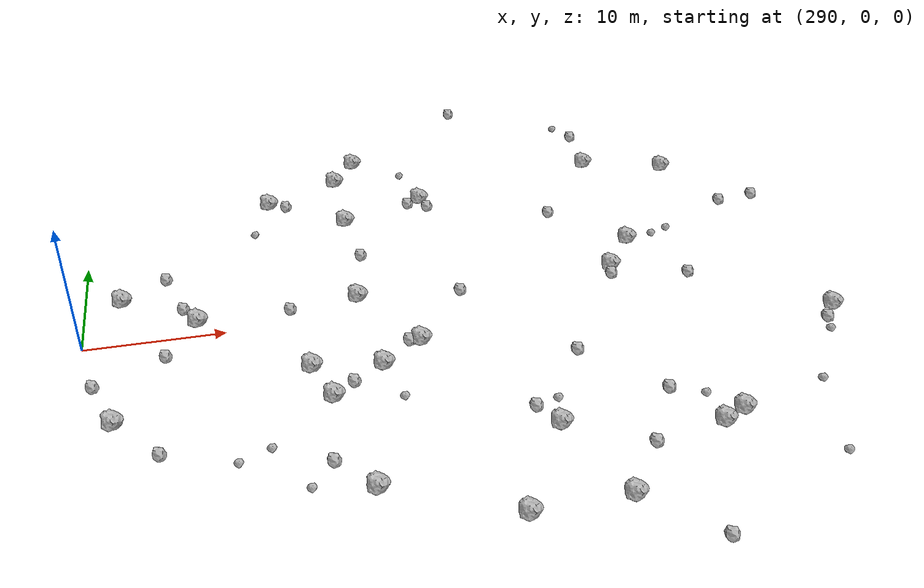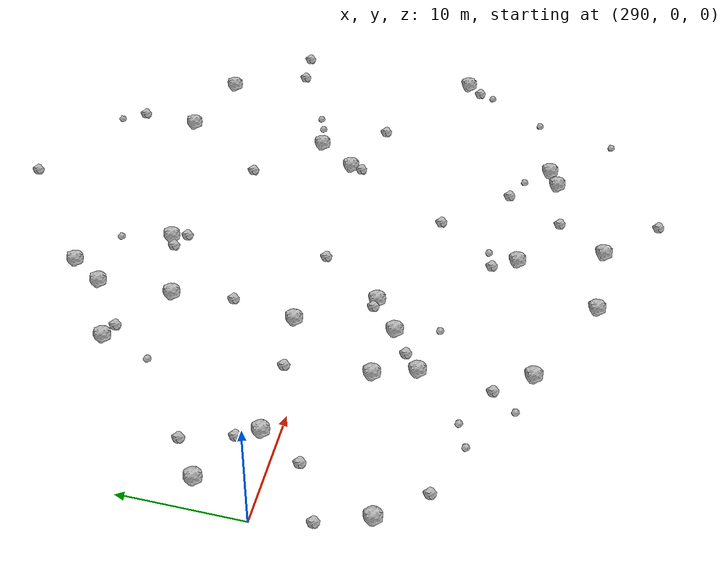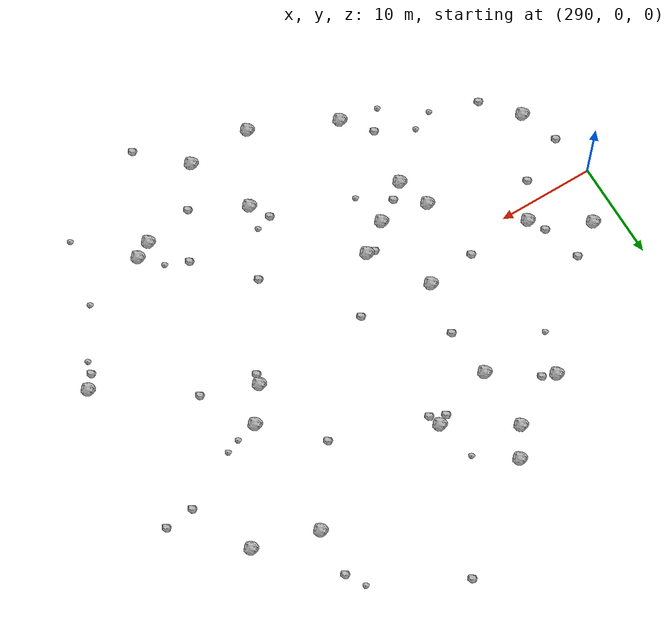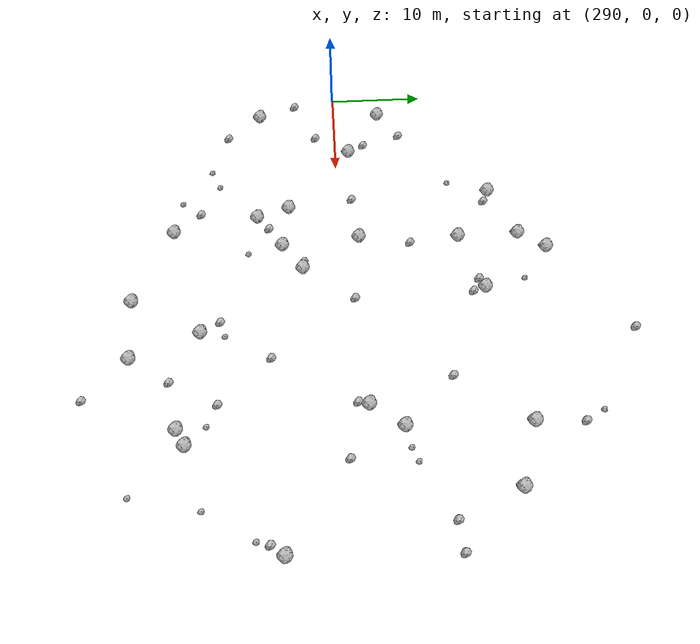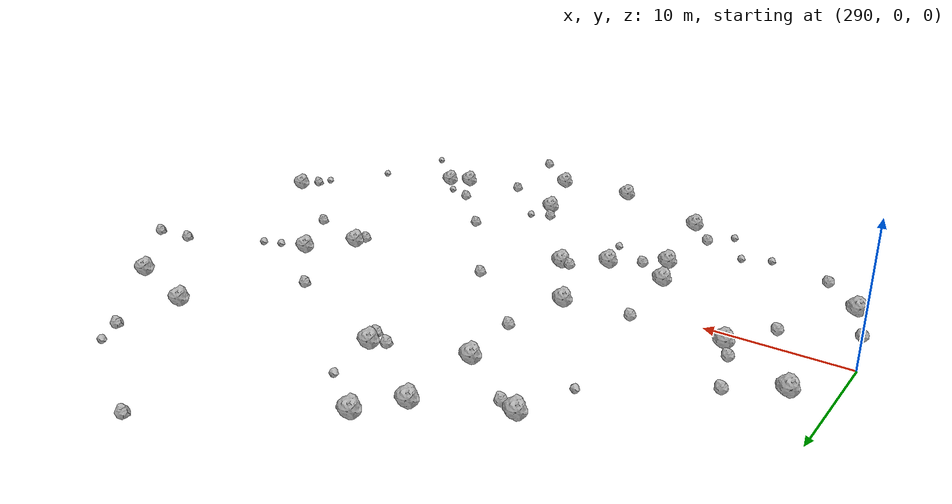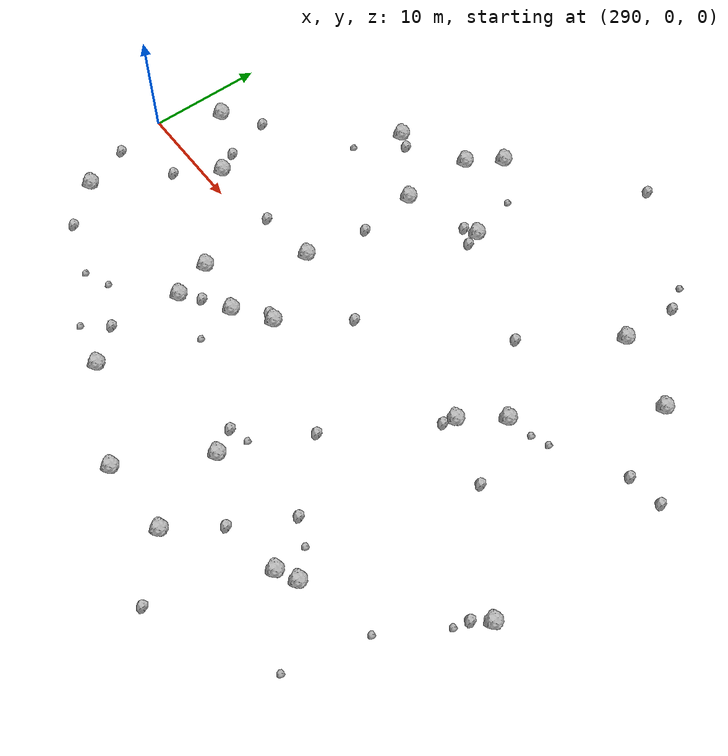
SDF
<sdf version="1.6">
 <world name="default">
  <include><uri>model://sun</uri></include>
  <model name="rock1_8_3">
   <include><uri>model://rock1</uri><pose>305.60893512580986 -5.268440396707909 0.5 0 0 0</pose></include>
  </model>
  <model name="rock1_8_4">
   <include><uri>model://rock1</uri><pose>329.46780816779824 2.2421795476069946 0.5 0 0 0</pose></include>
  </model>
  <model name="rock1_8_5">
   <include><uri>model://rock1</uri><pose>309.7850004179813 2.1193226813596553 0.5 0 0 0</pose></include>
  </model>
  <model name="rock1_8_6">
   <include><uri>model://rock1</uri><pose>310.5098619850954 -5.989635394632369 0.5 0 0 0</pose></include>
  </model>
  <model name="rock1_8_7">
   <include><uri>model://rock1</uri><pose>331.9669424217231 17.867489043810508 0.5 0 0 0</pose></include>
  </model>
  <model name="rock1_8_8">
   <include><uri>model://rock1</uri><pose>310.06494401848556 18.964314090836574 0.5 0 0 0</pose></include>
  </model>
  <model name="rock1_8_9">
   <include><uri>model://rock1</uri><pose>332.96351629821856 -15.263086392459424 0.5 0 0 0</pose></include>
  </model>
  <model name="rock1_8_10">
   <include><uri>model://rock1</uri><pose>311.9760208545326 21.75885590989455 0.5 0 0 0</pose></include>
  </model>
  <model name="rock1_8_11">
   <include><uri>model://rock1</uri><pose>331.2797986488566 -16.1339695566069 0.5 0 0 0</pose></include>
  </model>
  <model name="rock1_8_12">
   <include><uri>model://rock1</uri><pose>292.41538735515235 -8.445122335015554 0.5 0 0 0</pose></include>
  </model>
  <model name="rock1_8_13">
   <include><uri>model://rock1</uri><pose>320.803748854078 -14.226730238320044 0.5 0 0 0</pose></include>
  </model>
  <model name="rock1_8_14">
   <include><uri>model://rock1</uri><pose>338.5137908129033 15.948145818523287 0.5 0 0 0</pose></include>
  </model>
  <model name="rock1_8_15">
   <include><uri>model://rock1</uri><pose>343.9019499341714 -5.910968057092443 0.5 0 0 0</pose></include>
  </model>
  <model name="rock1_8_16">
   <include><uri>model://rock1</uri><pose>306.74127790673367 -8.63483502024468 0.5 0 0 0</pose></include>
  </model>
  <model name="rock1_8_17">
   <include><uri>model://rock1</uri><pose>298.06528414254166 1.4557180023512686 0.5 0 0 0</pose></include>
  </model>
  <model name="rock1_8_18">
   <include><uri>model://rock1</uri><pose>323.43893286643413 -21.148773674874775 0.5 0 0 0</pose></include>
  </model>
  <model name="rock1_8_19">
   <include><uri>model://rock1</uri><pose>310.1847950238949 12.614070168131683 0.5 0 0 0</pose></include>
  </model>
  <model name="rock1_8_20">
   <include><uri>model://rock1</uri><pose>308.356329796173 -17.45146855256916 0.5 0 0 0</pose></include>
  </model>
  <model name="rock1_8_21">
   <include><uri>model://rock1</uri><pose>316.7133898932011 14.845934426192656 0.5 0 0 0</pose></include>
  </model>
  <model name="rock1_8_22">
   <include><uri>model://rock1</uri><pose>304.29821854834876 16.386922039241284 0.5 0 0 0</pose></include>
  </model>
  <model name="rock1_8_23">
   <include><uri>model://rock1</uri><pose>313.4976383157388 -3.871504812608727 0.5 0 0 0</pose></include>
  </model>
  <model name="rock1_8_24">
   <include><uri>model://rock1</uri><pose>292.66323387279897 4.962824897673798 0.5 0 0 0</pose></include>
  </model>
  <model name="rock1_8_25">
   <include><uri>model://rock1</uri><pose>316.82563859026624 -21.34870928872025 0.5 0 0 0</pose></include>
  </model>
  <model name="rock1_8_26">
   <include><uri>model://rock1</uri><pose>331.89184860666626 5.528149235411725 0.5 0 0 0</pose></include>
  </model>
  <model name="rock2_8_0">
   <include><uri>model://rock2</uri><pose>304.71432254329085 1.5699277543065726 0.3 0 0 0</pose></include>
  </model>
  <model name="rock2_8_1">
   <include><uri>model://rock2</uri><pose>334.9456328675374 0.22982820239790414 0.3 0 0 0</pose></include>
  </model>
  <model name="rock2_8_2">
   <include><uri>model://rock2</uri><pose>332.1867101342106 22.768262625965242 0.3 0 0 0</pose></include>
  </model>
  <model name="rock2_8_3">
   <include><uri>model://rock2</uri><pose>322.1251850549294 29.394898538007745 0.3 0 0 0</pose></include>
  </model>
  <model name="rock2_8_4">
   <include><uri>model://rock2</uri><pose>297.0680178196867 3.166430430058057 0.3 0 0 0</pose></include>
  </model>
  <model name="rock2_8_5">
   <include><uri>model://rock2</uri><pose>295.37086384132203 -11.92673462982344 0.3 0 0 0</pose></include>
  </model>
  <model name="rock2_8_6">
   <include><uri>model://rock2</uri><pose>344.3473508996329 9.999679827097538 0.3 0 0 0</pose></include>
  </model>
  <model name="rock2_8_7">
   <include><uri>model://rock2</uri><pose>305.997969766234 -14.655327599998266 0.3 0 0 0</pose></include>
  </model>
  <model name="rock2_8_8">
   <include><uri>model://rock2</uri><pose>290.9425808098624 -4.464655523929853 0.3 0 0 0</pose></include>
  </model>
  <model name="rock2_8_9">
   <include><uri>model://rock2</uri><pose>326.19507143162406 -17.061342705230587 0.3 0 0 0</pose></include>
  </model>
  <model name="rock2_8_10">
   <include><uri>model://rock2</uri><pose>308.2267460418847 -7.372784451327462 0.3 0 0 0</pose></include>
  </model>
  <model name="rock2_8_11">
   <include><uri>model://rock2</uri><pose>315.6046280944999 14.31576330515415 0.3 0 0 0</pose></include>
  </model>
  <model name="rock2_8_12">
   <include><uri>model://rock2</uri><pose>323.95864414607274 -7.123462395954846 0.3 0 0 0</pose></include>
  </model>
  <model name="rock2_8_13">
   <include><uri>model://rock2</uri><pose>341.3083282778418 9.672519321492054 0.3 0 0 0</pose></include>
  </model>
  <model name="rock2_8_14">
   <include><uri>model://rock2</uri><pose>305.61462969993147 15.847204885512042 0.3 0 0 0</pose></include>
  </model>
  <model name="rock2_8_15">
   <include><uri>model://rock2</uri><pose>328.80617705015646 -12.27641415477293 0.3 0 0 0</pose></include>
  </model>
  <model name="rock2_8_16">
   <include><uri>model://rock2</uri><pose>326.72454718963536 10.611879923625501 0.3 0 0 0</pose></include>
  </model>
  <model name="rock2_8_17">
   <include><uri>model://rock2</uri><pose>310.7147855710174 7.507545370884529 0.3 0 0 0</pose></include>
  </model>
  <model name="rock2_8_18">
   <include><uri>model://rock2</uri><pose>317.37976502548094 1.434019004063618 0.3 0 0 0</pose></include>
  </model>
  <model name="rock2_8_19">
   <include><uri>model://rock2</uri><pose>312.63908180463466 -3.726678164387682 0.3 0 0 0</pose></include>
  </model>
  <model name="rock2_8_20">
   <include><uri>model://rock2</uri><pose>342.82104070137336 -7.194930402372904 0.3 0 0 0</pose></include>
  </model>
  <model name="rock2_8_21">
   <include><uri>model://rock2</uri><pose>319.61181750833987 -12.253733056048372 0.3 0 0 0</pose></include>
  </model>
  <model name="rock2_8_22">
   <include><uri>model://rock2</uri><pose>329.1466688154377 1.2160723921759882 0.3 0 0 0</pose></include>
  </model>
  <model name="rock2_8_23">
   <include><uri>model://rock2</uri><pose>295.8605532426806 7.189249014829983 0.3 0 0 0</pose></include>
  </model>
  <model name="rock2_8_24">
   <include><uri>model://rock2</uri><pose>327.77612691392835 -25.350277829578502 0.3 0 0 0</pose></include>
  </model>
  <model name="rock2_8_25">
   <include><uri>model://rock2</uri><pose>295.78202913711027 -2.153933690813467 0.3 0 0 0</pose></include>
  </model>
  <model name="rock2_8_26">
   <include><uri>model://rock2</uri><pose>317.09765068010813 13.603922031689919 0.3 0 0 0</pose></include>
  </model>
  <model name="rock3_8_0">
   <include><uri>model://rock3</uri><pose>304.3941656953544 -16.68615133367924 0.2 0 0 0</pose></include>
  </model>
  <model name="rock3_8_1">
   <include><uri>model://rock3</uri><pose>300.1709303147513 -13.655169184122645 0.2 0 0 0</pose></include>
  </model>
  <model name="rock3_8_2">
   <include><uri>model://rock3</uri><pose>331.0376651159849 24.654971451030363 0.2 0 0 0</pose></include>
  </model>
  <model name="rock3_8_3">
   <include><uri>model://rock3</uri><pose>337.78811046323284 -20.25609806187315 0.2 0 0 0</pose></include>
  </model>
  <model name="rock3_8_4">
   <include><uri>model://rock3</uri><pose>334.0632075859526 5.986693296806962 0.2 0 0 0</pose></include>
  </model>
  <model name="rock3_8_5">
   <include><uri>model://rock3</uri><pose>321.24363687918606 -11.777777499871348 0.2 0 0 0</pose></include>
  </model>
  <model name="rock3_8_6">
   <include><uri>model://rock3</uri><pose>342.4564521294126 -8.498488439453919 0.2 0 0 0</pose></include>
  </model>
  <model name="rock3_8_7">
   <include><uri>model://rock3</uri><pose>335.494026304219 6.543952823595731 0.2 0 0 0</pose></include>
  </model>
  <model name="rock3_8_8">
   <include><uri>model://rock3</uri><pose>302.2908796059057 -12.743500139617517 0.2 0 0 0</pose></include>
  </model>
  <model name="rock3_8_9">
   <include><uri>model://rock3</uri><pose>311.3245172422315 -9.53749929108525 0.2 0 0 0</pose></include>
  </model>
  <model name="rock3_8_10">
   <include><uri>model://rock3</uri><pose>302.8358009861446 12.121076498630849 0.2 0 0 0</pose></include>
  </model>
  <model name="rock3_8_11">
   <include><uri>model://rock3</uri><pose>339.3821265902855 -13.473054278701955 0.2 0 0 0</pose></include>
  </model>
  <model name="rock3_8_12">
   <include><uri>model://rock3</uri><pose>315.6838461415768 19.03732144851741 0.2 0 0 0</pose></include>
  </model>
  <model name="rock3_8_13">
   <include><uri>model://rock3</uri><pose>331.0437675336408 -13.30531744931076 0.2 0 0 0</pose></include>
  </model>
 </world>
</sdf>
